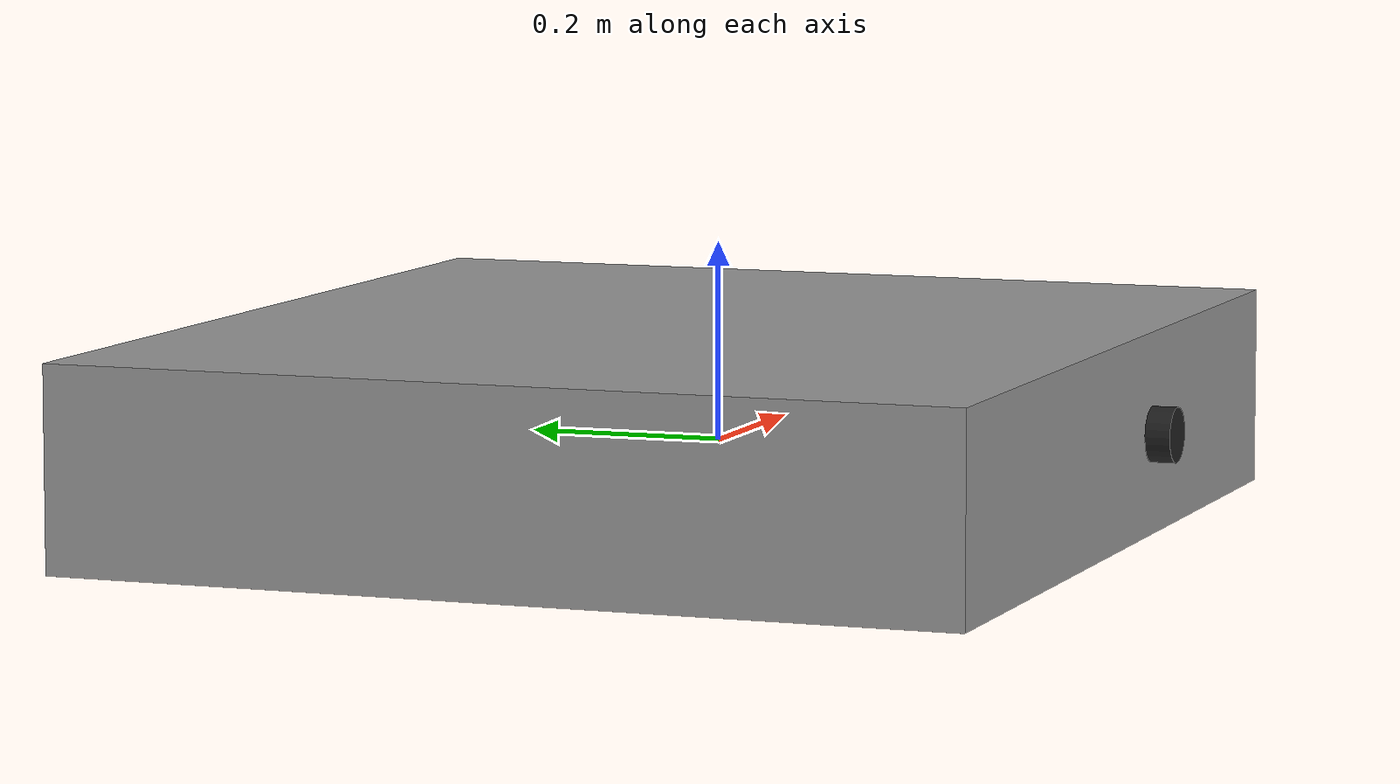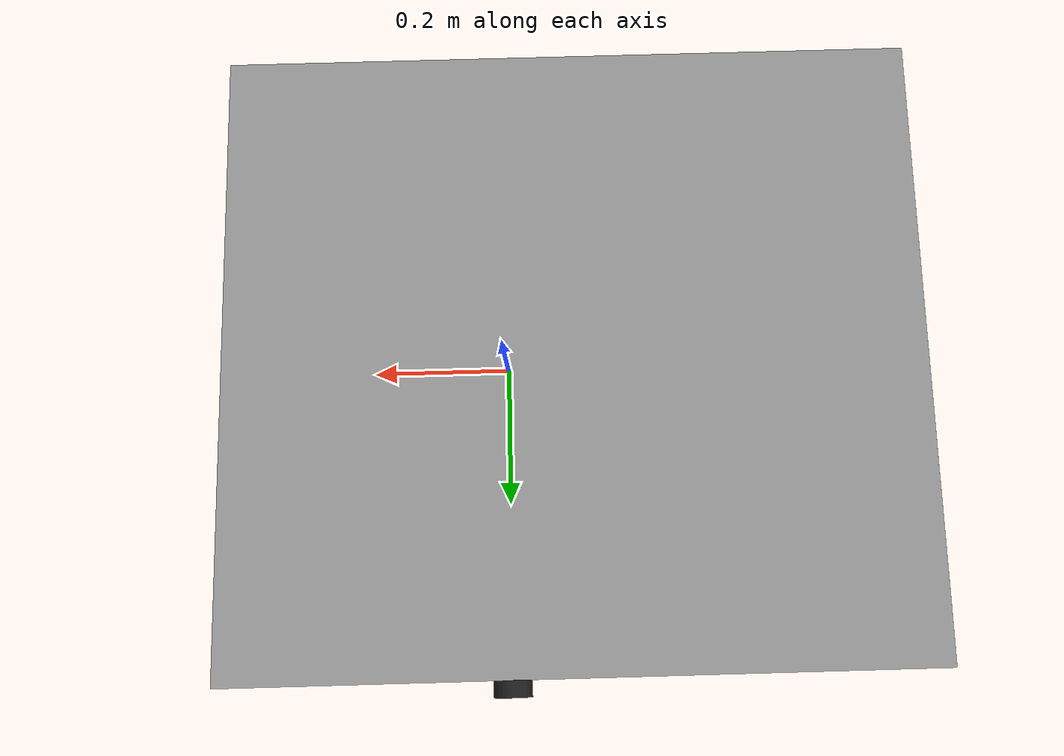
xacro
<?xml version='1.0'?>

<robot name="cart_front_steer" xmlns:xacro="http://www.ros.org/wiki/xacro">
  <xacro:include filename="$(find robot)/urdf/robot.gazebo" />

  <xacro:property name="wheel_radius" value="0.0275" />
  <xacro:property name="wheel_width" value="0.025" />
  <xacro:property name="footprint_width"  value="0.9" />
  <xacro:property name="footprint_height"  value="0.2" />
  <xacro:property name="footprint_length" value="1.0" />
  <xacro:property name="axel_dx" value="0.4" />

  <link name="robot_footprint"></link>

  <joint name="robot_footprint_joint" type="fixed">
    <origin xyz="0 0 0" rpy="0 0 0" />
    <parent link="robot_footprint"/>
    <child link="chassis" />
  </joint>

  <link name='chassis'>
    <inertial>
      <mass value="10.0"/>
      <origin xyz="${-footprint_length/2 + axel_dx} 0 0" rpy=" 0 0 0"/>
      <inertia
          ixx="0.001" ixy="0" ixz="0"
          iyy="0.001" iyz="0"
          izz="0.001"
      />
    </inertial>

    <collision name='chassis_collision'>
      <origin xyz="${-footprint_length/2 + axel_dx} 0 ${wheel_radius}" rpy=" 0 0 0"/>
      <geometry>
        <box size="${footprint_length} ${footprint_width} ${footprint_height}"/>
      </geometry>
    </collision>

    <visual name='chassis_visual'>
      <origin xyz="${-footprint_length/2 + axel_dx} 0 ${wheel_radius}" rpy=" 0 0 0"/>
      <geometry>
        <box size="${footprint_length} ${footprint_width} ${footprint_height}"/>
      </geometry>
    </visual>

  </link>

  <link name="front_left_wheel">
    <collision name='front_left_wheel_collision'>
      <origin xyz="0 ${wheel_width/2} 0" rpy="0 1.5707 1.5707"/>
      <geometry>
        <cylinder radius="${wheel_radius}" length="${wheel_width}"/>
      </geometry>
      <surface>
        <friction>
          <ode>
            <mu>0</mu>
            <mu2>0</mu2>
            <slip1>1.0</slip1>
            <slip2>1.0</slip2>
          </ode>
        </friction>
      </surface>
    </collision>

    <visual name='front_left_wheel_visual'>
      <origin xyz="0 ${wheel_width/2} 0" rpy="0 1.5707 1.5707"/>
      <geometry>
        <cylinder radius="${wheel_radius}" length="${wheel_width}"/>
      </geometry>
    </visual>

    <inertial>
      <mass value="1"/>
      <origin xyz="0.0 0 0" rpy="0 1.5707 1.5707"/>
      <inertia
          ixx="0.0001" ixy="0" ixz="0"
          iyy="0.0001" iyz="0"
          izz="0.003"
      />
    </inertial>
  </link>

  <link name="front_right_wheel">
    <collision name='front_right_wheel_collision'>
      <origin xyz="0 ${-wheel_width/2} 0" rpy="0 1.5707 1.5707"/>
      <geometry>
        <cylinder radius="${wheel_radius}" length="${wheel_width}"/>
      </geometry>
    </collision>
    <surface>
      <friction>
        <ode>
          <mu>0</mu>
          <mu2>0</mu2>
          <slip1>1.0</slip1>
          <slip2>1.0</slip2>
        </ode>
      </friction>
    </surface>
    <visual name='front_right_wheel_visual'>
      <origin xyz="0 ${-wheel_width/2} 0" rpy="0 1.5707 1.5707"/>
      <geometry>
        <cylinder radius="${wheel_radius}" length="${wheel_width}"/>
      </geometry>
    </visual>

    <inertial>
      <mass value="1"/>
      <origin xyz="0.0 0 0" rpy="0 1.5707 1.5707"/>
      <inertia
          ixx="0.0001" ixy="0" ixz="0"
          iyy="0.0001" iyz="0"
          izz="0.003"
      />
    </inertial>
  </link>

  <link name="back_left_wheel">
    <collision name='back_left_wheel_collision'>
      <origin xyz="0 ${wheel_width/2} 0" rpy="0 1.5707 1.5707"/>
      <geometry>
        <cylinder radius="${wheel_radius}" length="${wheel_width}"/>
      </geometry>
      <surface>
        <friction>
          <ode>
            <mu>0</mu>
            <mu2>0</mu2>
            <slip1>1.0</slip1>
            <slip2>1.0</slip2>
          </ode>
        </friction>
      </surface>
    </collision>

    <visual name='back_left_wheel_visual'>
      <origin xyz="0 ${wheel_width/2} 0" rpy="0 1.5707 1.5707"/>
      <geometry>
        <cylinder radius="${wheel_radius}" length="${wheel_width}"/>
      </geometry>
    </visual>

    <inertial>
      <mass value="1"/>
      <origin xyz="0.0 0 0" rpy="0 1.5707 1.5707"/>
      <inertia
          ixx="0.0001" ixy="0" ixz="0"
          iyy="0.0001" iyz="0"
          izz="0.003"
      />
    </inertial>
  </link>

  <link name="back_right_wheel">
    <collision name='back_right_wheel_collision'>
      <origin xyz="0 ${-wheel_width/2} 0" rpy="0 1.5707 1.5707"/>
      <geometry>
        <cylinder radius="${wheel_radius}" length="${wheel_width}"/>
      </geometry>
    </collision>
    <surface>
      <friction>
        <ode>
          <mu>0</mu>
          <mu2>0</mu2>
          <slip1>1.0</slip1>
          <slip2>1.0</slip2>
        </ode>
      </friction>
    </surface>
    <visual name='back_right_wheel_visual'>
      <origin xyz="0 ${-wheel_width/2} 0" rpy="0 1.5707 1.5707"/>
      <geometry>
        <cylinder radius="${wheel_radius}" length="${wheel_width}"/>
      </geometry>
    </visual>

    <inertial>
      <mass value="1"/>
      <origin xyz="0.0 0 0" rpy="0 1.5707 1.5707"/>
      <inertia
          ixx="0.0001" ixy="0" ixz="0"
          iyy="0.0001" iyz="0"
          izz="0.003"
      />
    </inertial>
  </link>

  <joint type="universal" name="front_left_wheel_hinge">
    <origin xyz="0 ${footprint_width/2 + 0.001} ${wheel_radius}" rpy="0 0 0"/>
    <child link="front_left_wheel"/>
    <parent link="chassis"/>
  </joint>

  <joint type="universal" name="front_right_wheel_hinge">
    <origin xyz="0 ${-footprint_width/2 - 0.001} ${wheel_radius}" rpy="0 0 0"/>
    <child link="front_right_wheel"/>
    <parent link="chassis"/>
  </joint>

  <joint type="revolute" name="back_left_wheel_hinge">
    <origin xyz="0 ${footprint_width/2 + 0.001} ${wheel_radius}" rpy="0 0 0"/>
    <child link="back_left_wheel"/>
    <parent link="chassis"/>
  </joint>

  <joint type="revolute" name="back_right_wheel_hinge">
    <origin xyz="0 ${-footprint_width/2 - 0.001} ${wheel_radius}" rpy="0 0 0"/>
    <child link="back_right_wheel"/>
    <parent link="chassis"/>
  </joint>

  <transmission name="tran1">
    <type>transmission_interface/SimpleTransmission</type>
    <joint name="back_left_wheel_hinge">
      <hardwareInterface>hardware_interface/EffortJointInterface</hardwareInterface>
    </joint>
    <actuator name="motor1">
      <hardwareInterface>hardware_interface/EffortJointInterface</hardwareInterface>
      <mechanicalReduction>1</mechanicalReduction>
    </actuator>
  </transmission>

  <transmission name="tran2">
    <type>transmission_interface/SimpleTransmission</type>
    <joint name="back_right_wheel_hinge">
      <hardwareInterface>hardware_interface/EffortJointInterface</hardwareInterface>
    </joint>
    <actuator name="motor2">
      <hardwareInterface>hardware_interface/EffortJointInterface</hardwareInterface>
      <mechanicalReduction>1</mechanicalReduction>
    </actuator>
  </transmission>

<gazebo reference="front_left_wheel">
    <material>Gazebo/Black</material>
</gazebo>

<gazebo reference="front_right_wheel">
    <material>Gazebo/Black</material>
</gazebo>

<gazebo reference="back_left_wheel">
    <material>Gazebo/Black</material>
</gazebo>

<gazebo reference="back_right_wheel">
    <material>Gazebo/Black</material>
</gazebo>

<gazebo reference="chassis">
    <material>Gazebo/Grey</material>
</gazebo>

</robot>
